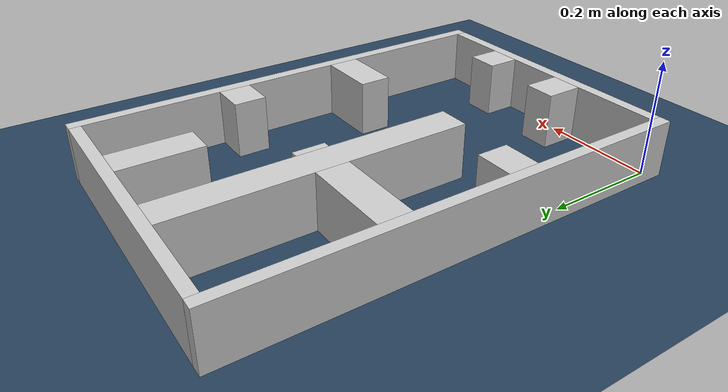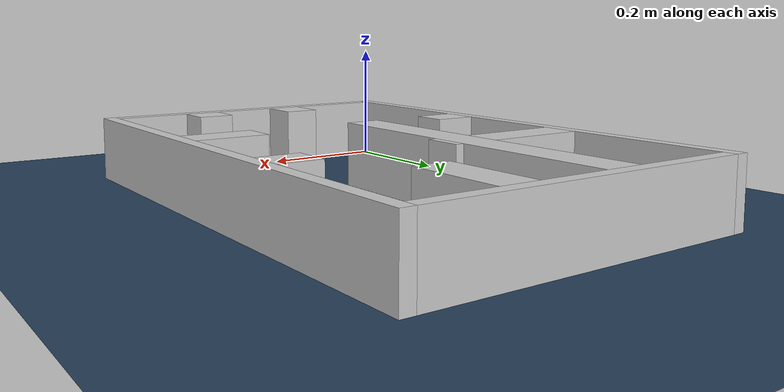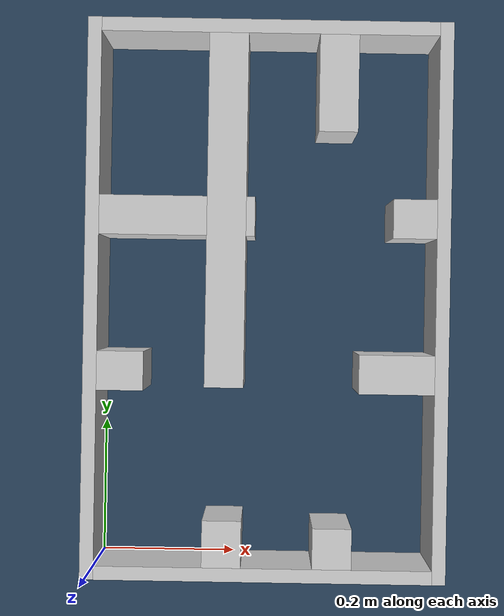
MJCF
<?xml version="1.0" ?>
<mujoco model="generated_real_template">
  <compiler angle="degree"/>
  <option timestep="0.002" integrator="implicitfast" iterations="100" cone="elliptic"/>
  <default>
    <geom density="1"/>
  </default>
  <asset>
    <texture builtin="gradient" height="3072" rgb1="0.3 0.5 0.7" rgb2="0 0 0" type="skybox" width="512"/>
    <texture builtin="checker" height="300" mark="edge" markrgb="0.8 0.8 0.8" name="groundplane" rgb1="0.2 0.3 0.4" rgb2="0.1 0.2 0.3" type="2d" width="300"/>
    <material name="groundplane" reflectance="0.2" texrepeat="5 5" texture="groundplane" texuniform="true"/>
  </asset>
  <worldbody>
    <light dir="0 0 -1" directional="true" pos="0 0 1.5"/>
    <geom name="floor" type="plane" condim="4" friction="0.5 0.005 0.001" material="groundplane" size="0 0 0.05"/>
    <body name="walls">
      <geom name="wall_boundary_left" type="box" condim="4" friction="1.0 0.005 0.0001" rgba="0.8 0.8 0.8 1" pos="-0.010000 0.387500 0.050000" euler="0 0 0.000000" size="0.010000 0.407500 0.050000"/>
      <geom name="wall_boundary_right" type="box" condim="4" friction="1.0 0.005 0.0001" rgba="0.8 0.8 0.8 1" pos="0.500000 0.387500 0.050000" euler="0 0 0.000000" size="0.010000 0.407500 0.050000"/>
      <geom name="wall_boundary_bottom" type="box" condim="4" friction="1.0 0.005 0.0001" rgba="0.8 0.8 0.8 1" pos="0.245000 -0.010000 0.050000" euler="0 0 0.000000" size="0.245000 0.010000 0.050000"/>
      <geom name="wall_boundary_top" type="box" condim="4" friction="1.0 0.005 0.0001" rgba="0.8 0.8 0.8 1" pos="0.245000 0.785000 0.050000" euler="0 0 0.000000" size="0.245000 0.010000 0.050000"/>
      <geom name="wall_inner_1_1" type="box" condim="4" friction="1.0 0.005 0.0001" rgba="0.8 0.8 0.8 1" pos="0.344847 0.029563 0.050000" euler="0 0 90.000000" size="0.029563 0.028500 0.050000"/>
      <geom name="wall_inner_1_2" type="box" condim="4" friction="1.0 0.005 0.0001" rgba="0.8 0.8 0.8 1" pos="0.344847 0.704555 0.050000" euler="0 0 90.000000" size="0.070445 0.028500 0.050000"/>
      <geom name="wall_inner_2_1" type="box" condim="4" friction="1.0 0.005 0.0001" rgba="0.8 0.8 0.8 1" pos="0.184665 0.034034 0.050000" euler="0 0 90.000000" size="0.034034 0.028500 0.050000"/>
      <geom name="wall_inner_2_2" type="box" condim="4" friction="1.0 0.005 0.0001" rgba="0.8 0.8 0.8 1" pos="0.184665 0.517849 0.050000" euler="0 0 90.000000" size="0.257151 0.028500 0.050000"/>
      <geom name="wall_inner_3_1" type="box" condim="4" friction="1.0 0.005 0.0001" rgba="0.8 0.8 0.8 1" pos="0.113032 0.509391 0.050000" euler="0 0 0.000000" size="0.113032 0.028500 0.050000"/>
      <geom name="wall_inner_3_2" type="box" condim="4" friction="1.0 0.005 0.0001" rgba="0.8 0.8 0.8 1" pos="0.458211 0.509391 0.050000" euler="0 0 0.000000" size="0.031789 0.028500 0.050000"/>
      <geom name="wall_inner_4_1" type="box" condim="4" friction="1.0 0.005 0.0001" rgba="0.8 0.8 0.8 1" pos="0.033868 0.283154 0.050000" euler="0 0 0.000000" size="0.033868 0.028500 0.050000"/>
      <geom name="wall_inner_4_2" type="box" condim="4" friction="1.0 0.005 0.0001" rgba="0.8 0.8 0.8 1" pos="0.434959 0.283154 0.050000" euler="0 0 0.000000" size="0.055041 0.028500 0.050000"/>
    </body>
  </worldbody>
</mujoco>
